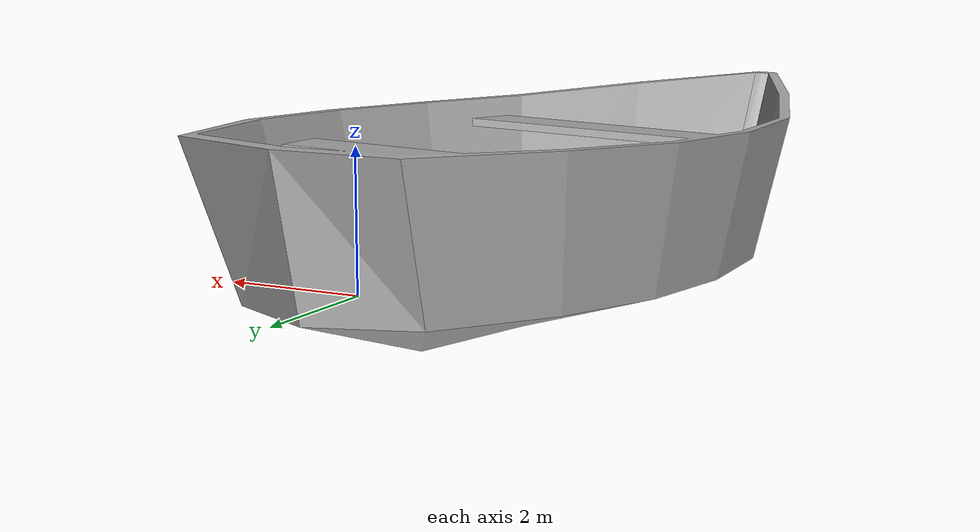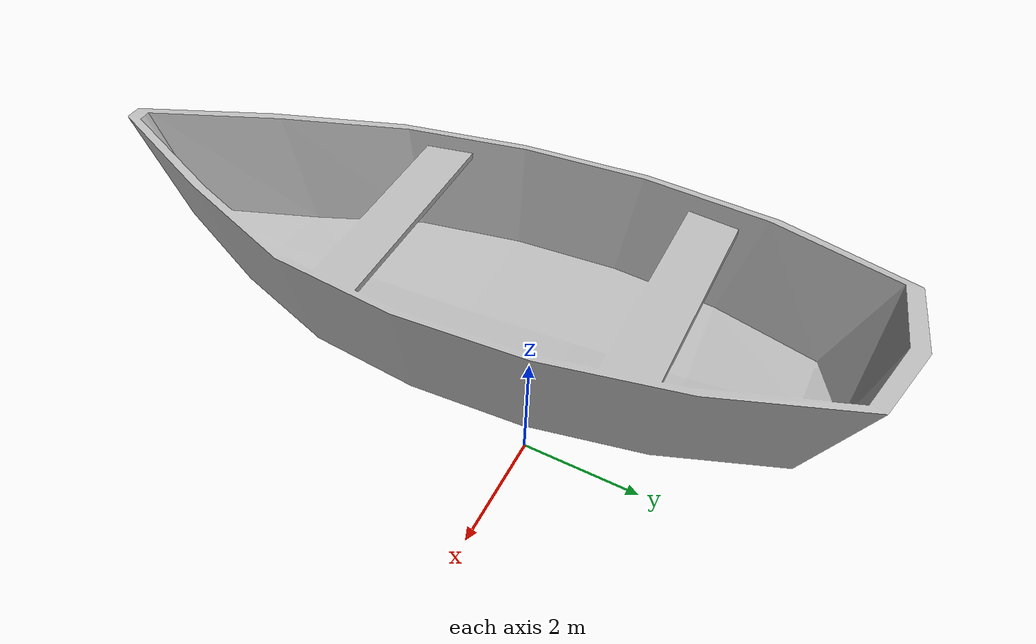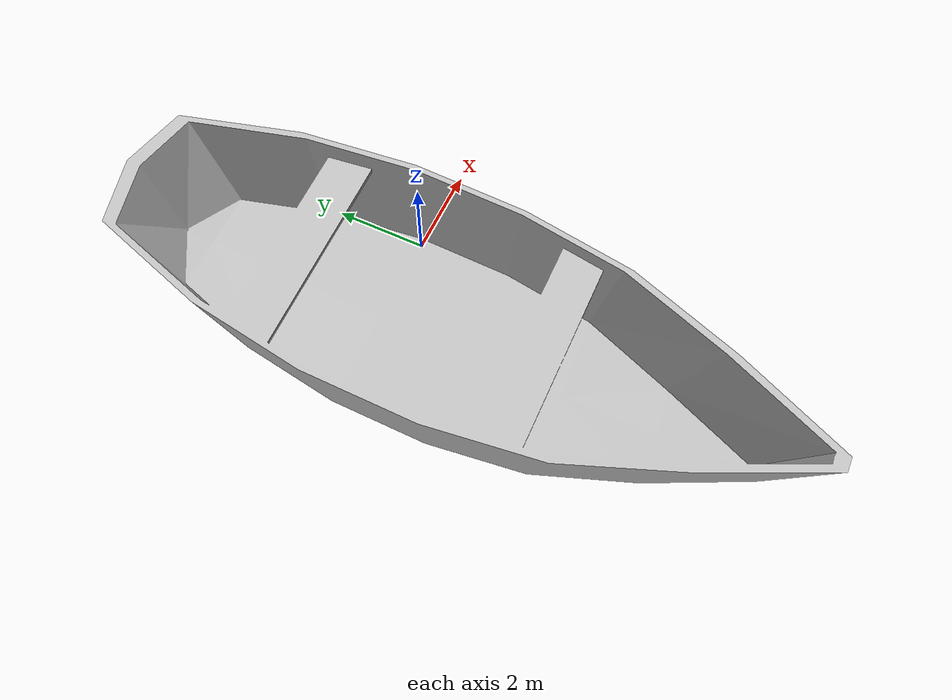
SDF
<?xml version="1.0" ?>
<sdf version="1.5">
  <model name="boat2">
    <static>true</static>
    <link name="link">
      <collision name="boat2_collision">
        <pose>0 0 0.1 0 0 0</pose>
        <geometry>
          <mesh>
	     <uri>model://boat2/meshes/boat2.stl</uri>
          </mesh>
        </geometry>
      </collision>

      <visual name="boat2_visual">
        <cast_shadows>false</cast_shadows>
        <pose>0 0 0.1 0 0 0</pose>
        <geometry>
          <mesh>
	     <uri>model://boat2/meshes/boat2.dae</uri>
          </mesh>
        </geometry>

      </visual>
    </link>
  </model>
</sdf>
